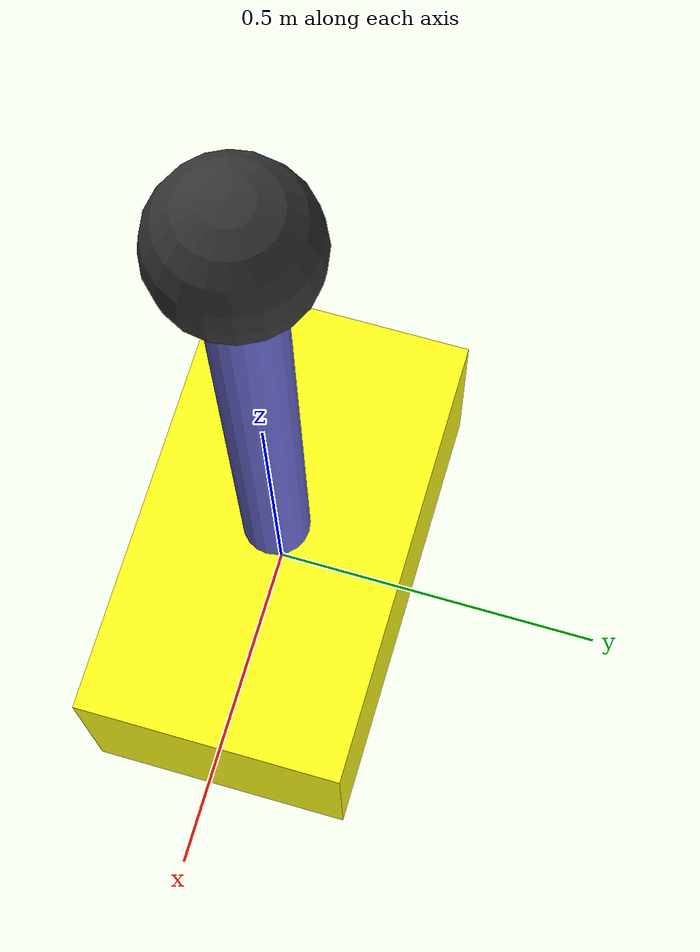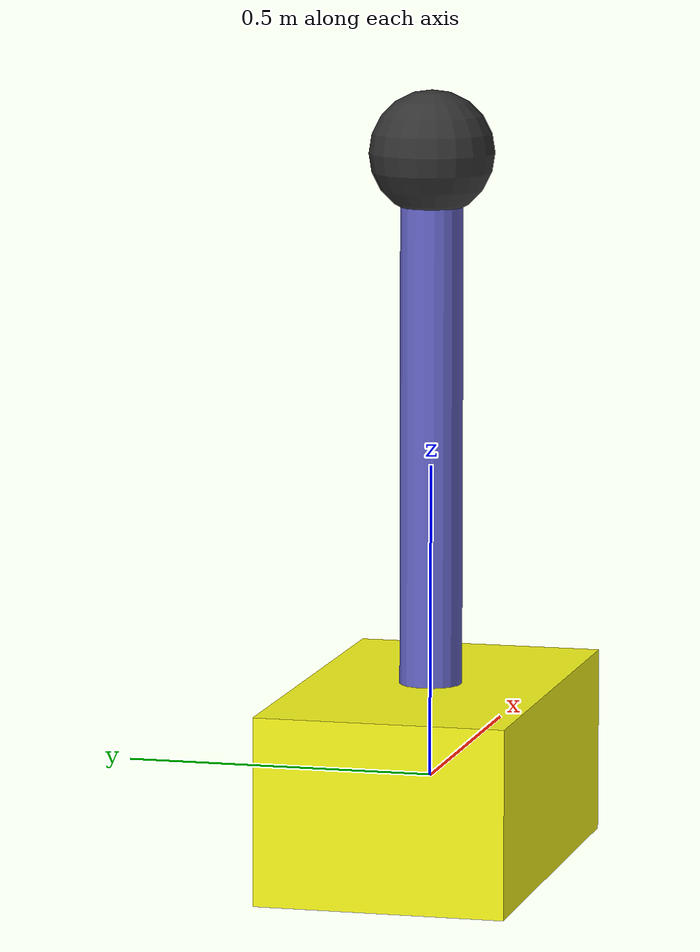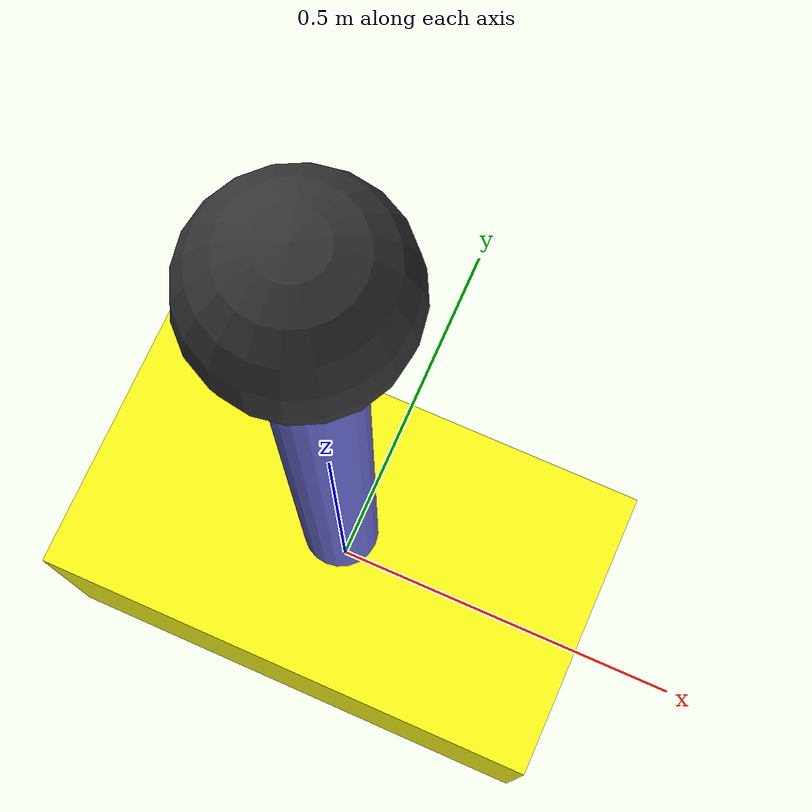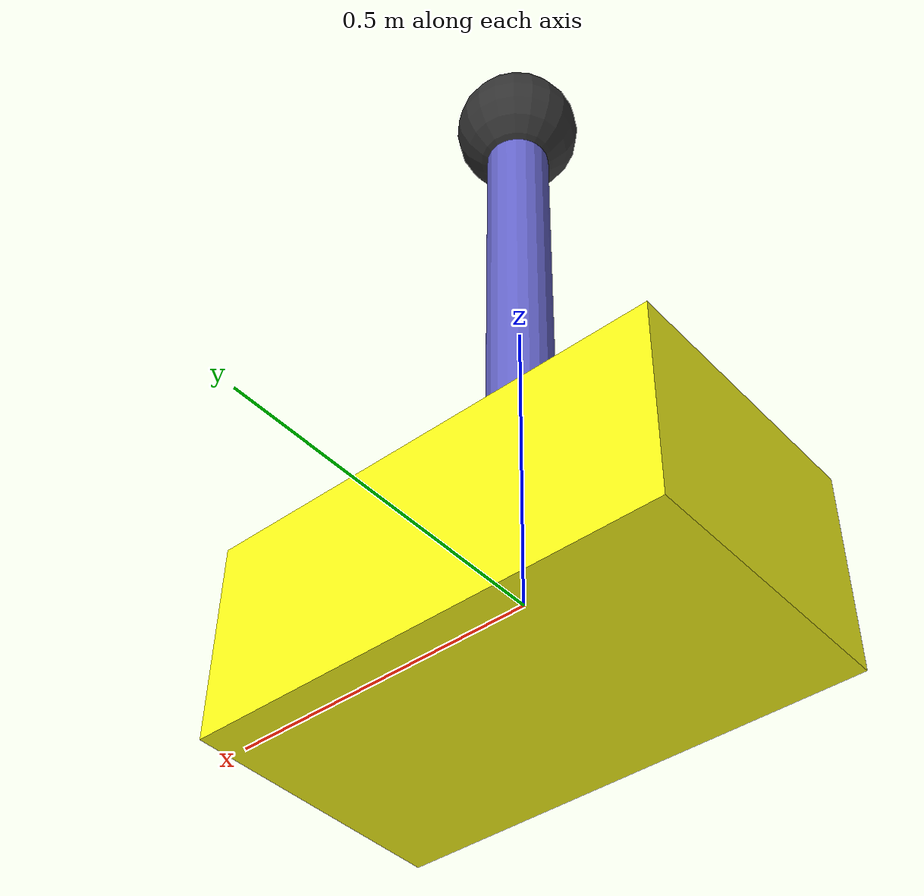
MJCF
<!-- cart_pole_minimal.xml
     1-D cart-pole, no wheels, no pole-torque actuator, no superfluous sensors.
     Matches the analytic parameters in env.cartpole.CartPoleParams (mc=1, mp=1, l=1). -->

<mujoco model="CartPoleMinimal">
    <!-- World & options -->
    <option gravity="0 0 -9.81" timestep="0.01"/>
    <worldbody>
        <!-- Removed ground plane to prevent collisions -->

        <!-- Cart -->
        <body name="cart" pos="0 0 0">
            <!-- Slide joint: 1-D motion along +x -->
            <joint name="cart_slide" type="slide" axis="1 0 0"/>

            <geom type="box" size="0.35 0.2 0.15" rgba="1 1 0.1 1" mass="1"/>

            <!-- Pole -->
            <body name="pole" pos="0 0 0" euler="0 0 180">
                <!-- Hinge around +y (standard cart-pole convention) -->
                <joint name="pole_hinge" type="hinge" pos="0 0 0" axis="0 1 0"/>

                <!-- Capsule pole: 1 m length, negligible mass (mass at the end) -->
                <geom type="capsule" fromto="0 0 0 0 0 1" size="0.05" rgba="0.4 0.4 0.8 1" mass="1e-6"/>

                <!-- Point mass at the tip -->
                <body name="tip_mass" pos="0 0 1">
                    <geom type="sphere" size="0.1" rgba="0.2 0.2 0.2 1" mass="1"/>
                </body>
            </body>
        </body>
    </worldbody>

    <!-- Actuator -->
    <actuator>
        <!-- Direct force on cart within ±10 N (matches controller assumptions) -->
        <motor name="cart_force" joint="cart_slide"
               ctrllimited="true" ctrlrange="-10 10"/>
    </actuator>
</mujoco>
